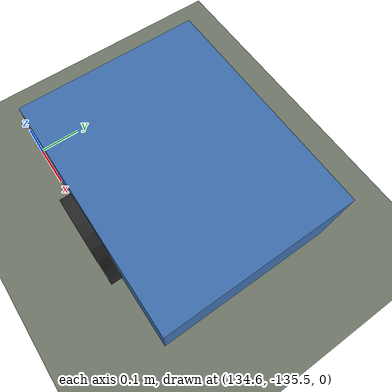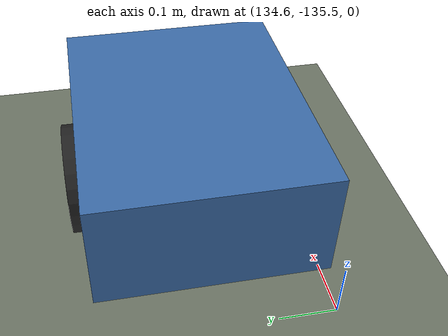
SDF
<?xml version="1.0" ?>
<sdf version="1.8">
  <world name="sanfrancisco_russian_hill">

    <physics name="1ms" type="ignored">
      <max_step_size>0.001</max_step_size>
      <real_time_factor>1.0</real_time_factor>
    </physics>

    <plugin filename="ignition-gazebo-physics-system"
            name="ignition::gazebo::systems::Physics"/>
    <plugin filename="ignition-gazebo-scene-broadcaster-system"
            name="ignition::gazebo::systems::SceneBroadcaster"/>
    <plugin filename="ignition-gazebo-user-commands-system"
            name="ignition::gazebo::systems::UserCommands"/>
    <!-- gpu_lidar produces nothing at all without this plugin. -->
    <plugin filename="ignition-gazebo-sensors-system"
            name="ignition::gazebo::systems::Sensors">
      <render_engine>ogre2</render_engine>
    </plugin>

    <!-- Documentary: lets a reader check the georeferencing claim against
         the OSM source. Nothing in the stack depends on it. -->
    <spherical_coordinates>
      <surface_model>EARTH_WGS84</surface_model>
      <world_frame_orientation>ENU</world_frame_orientation>
      <latitude_deg>37.801</latitude_deg>
      <longitude_deg>-122.419</longitude_deg>
      <elevation>70.0</elevation>
      <heading_deg>0</heading_deg>
    </spherical_coordinates>

    <scene>
      <ambient>0.35 0.35 0.38 1</ambient>
      <background>0.62 0.72 0.85 1</background>
      <shadows>false</shadows>
    </scene>

    <light type="directional" name="sun">
      <cast_shadows>false</cast_shadows>
      <pose>0 0 50 0 0 0</pose>
      <diffuse>0.95 0.93 0.88 1</diffuse>
      <specular>0.15 0.15 0.15 1</specular>
      <direction>-0.6 0.45 -0.65</direction>
    </light>

    <!-- A dim fill from the opposite side so shaded walls stay legible
         rather than going to flat black. Cheap: no shadows, no extra
         geometry pass. -->
    <light type="directional" name="fill">
      <cast_shadows>false</cast_shadows>
      <pose>0 0 50 0 0 0</pose>
      <diffuse>0.25 0.27 0.32 1</diffuse>
      <specular>0 0 0 1</specular>
      <direction>0.6 -0.45 -0.5</direction>
    </light>

    <model name="ground_plane">
      <static>true</static>
      <link name="link">
        <collision name="collision">
          <geometry><plane><normal>0 0 1</normal>
            <size>800 800</size></plane></geometry>
        </collision>
        <visual name="visual">
          <geometry><plane><normal>0 0 1</normal>
            <size>800 800</size></plane></geometry>
          <material>
            <ambient>0.35 0.37 0.33 1</ambient>
            <diffuse>0.45 0.48 0.42 1</diffuse>
          </material>
        </visual>
      </link>
    </model>

    <include>
      <uri>model://site_buildings</uri>
    </include>

    <include>
      <uri>model://roboto_bot</uri>
      <name>roboto_bot</name>
      <pose>134.9 -135.3 0 0 0 0.000000</pose>
    </include>

  </world>
</sdf>

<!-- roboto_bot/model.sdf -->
<sdf version="1.8">
  <model name="roboto_bot">

    <link name="base_link">
      <pose>0 0 0.15 0 0 0</pose>
      <inertial>
        <pose>0.07 0 0 0 0 0</pose>
        <mass>15.0</mass>
        <!-- Solid box 0.5 x 0.4 x 0.2: I = m/12 * (a^2 + b^2) -->
        <inertia>
          <ixx>0.2500</ixx><ixy>0</ixy><ixz>0</ixz>
          <iyy>0.3625</iyy><iyz>0</iyz>
          <izz>0.5125</izz>
        </inertia>
      </inertial>
      <collision name="collision">
        <geometry><box><size>0.5 0.4 0.2</size></box></geometry>
      </collision>
      <visual name="visual">
        <geometry><box><size>0.5 0.4 0.2</size></box></geometry>
        <material>
          <ambient>0.20 0.35 0.55 1</ambient>
          <diffuse>0.25 0.45 0.70 1</diffuse>
        </material>
      </visual>

      <sensor name="gpu_lidar" type="gpu_lidar">
        <!-- Clear of the chassis: a sensor inside its own collision box
             returns range_min on every beam. -->
        <pose>0.15 0 0.15 0 0 0</pose>
        <topic>scan</topic>
        <update_rate>10</update_rate>
        <always_on>true</always_on>
        <visualize>true</visualize>
        <lidar>
          <scan>
            <horizontal>
              <samples>180</samples>
              <resolution>1</resolution>
              <min_angle>-2.356194490</min_angle>  <!-- -135 deg -->
              <max_angle>2.356194490</max_angle>   <!-- +135 deg, 270 FOV -->
            </horizontal>
            <vertical>
              <samples>1</samples>
              <min_angle>0</min_angle>
              <max_angle>0</max_angle>
            </vertical>
          </scan>
          <range>
            <min>0.15</min>
            <max>30.0</max>
            <resolution>0.01</resolution>
          </range>
          <noise>
            <type>gaussian</type>
            <mean>0.0</mean>
            <stddev>0.02</stddev>
          </noise>
        </lidar>
      </sensor>
    </link>

    <link name="wheel_left">
      <pose>0 0.2 0.10 0 0 0</pose>
      <inertial>
        <mass>1.0</mass>
        <!-- Cylinder r=0.10 h=0.05, spin axis = y.
             about axis: m r^2 / 2 ; about diameter: m/12 (3r^2 + h^2) -->
        <inertia>
          <ixx>0.002708</ixx><ixy>0</ixy><ixz>0</ixz>
          <iyy>0.005000</iyy><iyz>0</iyz>
          <izz>0.002708</izz>
        </inertia>
      </inertial>
      <collision name="collision">
        <pose>0 0 0 1.5707963 0 0</pose>
        <geometry><cylinder><radius>0.10</radius><length>0.05</length></cylinder></geometry>
        <surface>
          <friction><ode><mu>1.0</mu><mu2>1.0</mu2></ode></friction>
        </surface>
      </collision>
      <visual name="visual">
        <pose>0 0 0 1.5707963 0 0</pose>
        <geometry><cylinder><radius>0.10</radius><length>0.05</length></cylinder></geometry>
        <material>
          <ambient>0.08 0.08 0.08 1</ambient>
          <diffuse>0.15 0.15 0.15 1</diffuse>
        </material>
      </visual>
    </link>

    <link name="wheel_right">
      <pose>0 -0.2 0.10 0 0 0</pose>
      <inertial>
        <mass>1.0</mass>
        <inertia>
          <ixx>0.002708</ixx><ixy>0</ixy><ixz>0</ixz>
          <iyy>0.005000</iyy><iyz>0</iyz>
          <izz>0.002708</izz>
        </inertia>
      </inertial>
      <collision name="collision">
        <pose>0 0 0 1.5707963 0 0</pose>
        <geometry><cylinder><radius>0.10</radius><length>0.05</length></cylinder></geometry>
        <surface>
          <friction><ode><mu>1.0</mu><mu2>1.0</mu2></ode></friction>
        </surface>
      </collision>
      <visual name="visual">
        <pose>0 0 0 1.5707963 0 0</pose>
        <geometry><cylinder><radius>0.10</radius><length>0.05</length></cylinder></geometry>
        <material>
          <ambient>0.08 0.08 0.08 1</ambient>
          <diffuse>0.15 0.15 0.15 1</diffuse>
        </material>
      </visual>
    </link>

    <link name="caster">
      <pose>0.18 0 0.05 0 0 0</pose>
      <inertial>
        <mass>0.5</mass>
        <inertia>
          <ixx>0.0005</ixx><ixy>0</ixy><ixz>0</ixz>
          <iyy>0.0005</iyy><iyz>0</iyz>
          <izz>0.0005</izz>
        </inertia>
      </inertial>
      <collision name="collision">
        <geometry><sphere><radius>0.05</radius></sphere></geometry>
        <surface>
          <!-- Near-frictionless: a caster that grips fights the drive
               wheels and makes the robot veer under pure-forward commands. -->
          <friction><ode><mu>0.001</mu><mu2>0.001</mu2></ode></friction>
        </surface>
      </collision>
      <visual name="visual">
        <geometry><sphere><radius>0.05</radius></sphere></geometry>
        <material><ambient>0.3 0.3 0.3 1</ambient></material>
      </visual>
    </link>

    <joint name="joint_wheel_left" type="revolute">
      <parent>base_link</parent>
      <child>wheel_left</child>
      <axis>
        <xyz>0 1 0</xyz>
        <limit><lower>-1e16</lower><upper>1e16</upper></limit>
        <dynamics><damping>0.02</damping></dynamics>
      </axis>
    </joint>

    <joint name="joint_wheel_right" type="revolute">
      <parent>base_link</parent>
      <child>wheel_right</child>
      <axis>
        <xyz>0 1 0</xyz>
        <limit><lower>-1e16</lower><upper>1e16</upper></limit>
        <dynamics><damping>0.02</damping></dynamics>
      </axis>
    </joint>

    <joint name="joint_caster" type="ball">
      <parent>base_link</parent>
      <child>caster</child>
    </joint>

    <plugin filename="ignition-gazebo-diff-drive-system"
            name="ignition::gazebo::systems::DiffDrive">
      <left_joint>joint_wheel_left</left_joint>
      <right_joint>joint_wheel_right</right_joint>
      <!-- Must match OdomErrorModel.wheel_baseline_m in
           roboto_core/sim/odom_corruptor.py -->
      <wheel_separation>0.4</wheel_separation>
      <wheel_radius>0.10</wheel_radius>
      <max_linear_acceleration>1.0</max_linear_acceleration>
      <topic>cmd_vel</topic>
      <odom_topic>odom</odom_topic>
      <tf_topic>tf</tf_topic>
      <frame_id>odom</frame_id>
      <child_frame_id>base_link</child_frame_id>
      <odom_publish_frequency>50</odom_publish_frequency>
    </plugin>

    <plugin filename="ignition-gazebo-pose-publisher-system"
            name="ignition::gazebo::systems::PosePublisher">
      <publish_link_pose>false</publish_link_pose>
      <publish_model_pose>true</publish_model_pose>
      <publish_nested_model_pose>false</publish_nested_model_pose>
      <use_pose_vector_msg>true</use_pose_vector_msg>
      <update_frequency>50</update_frequency>
    </plugin>

    <plugin filename="ignition-gazebo-joint-state-publisher-system"
            name="ignition::gazebo::systems::JointStatePublisher">
      <joint_name>joint_wheel_left</joint_name>
      <joint_name>joint_wheel_right</joint_name>
    </plugin>

  </model>
</sdf>
